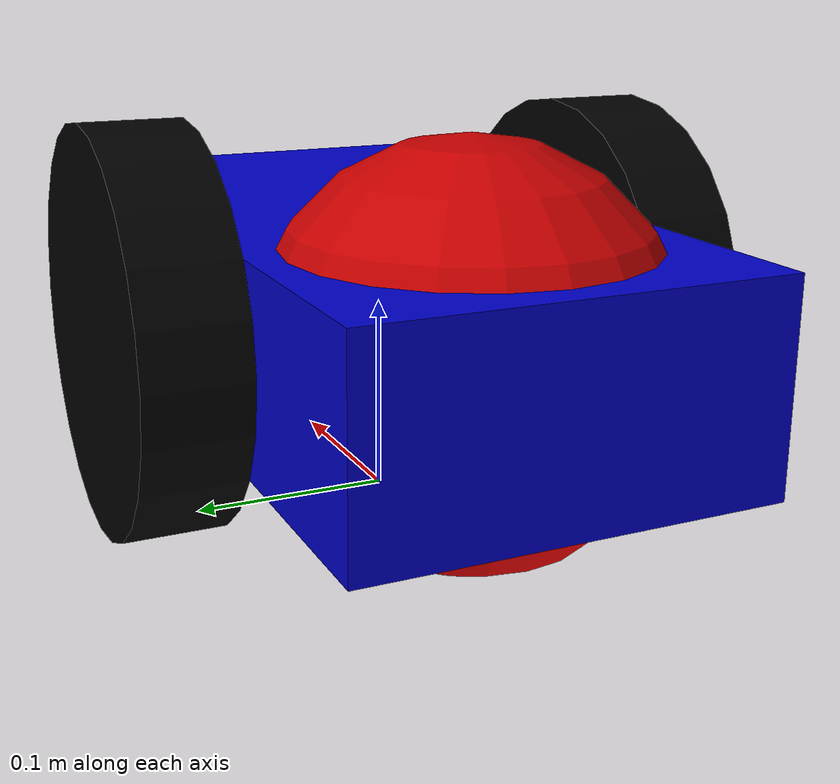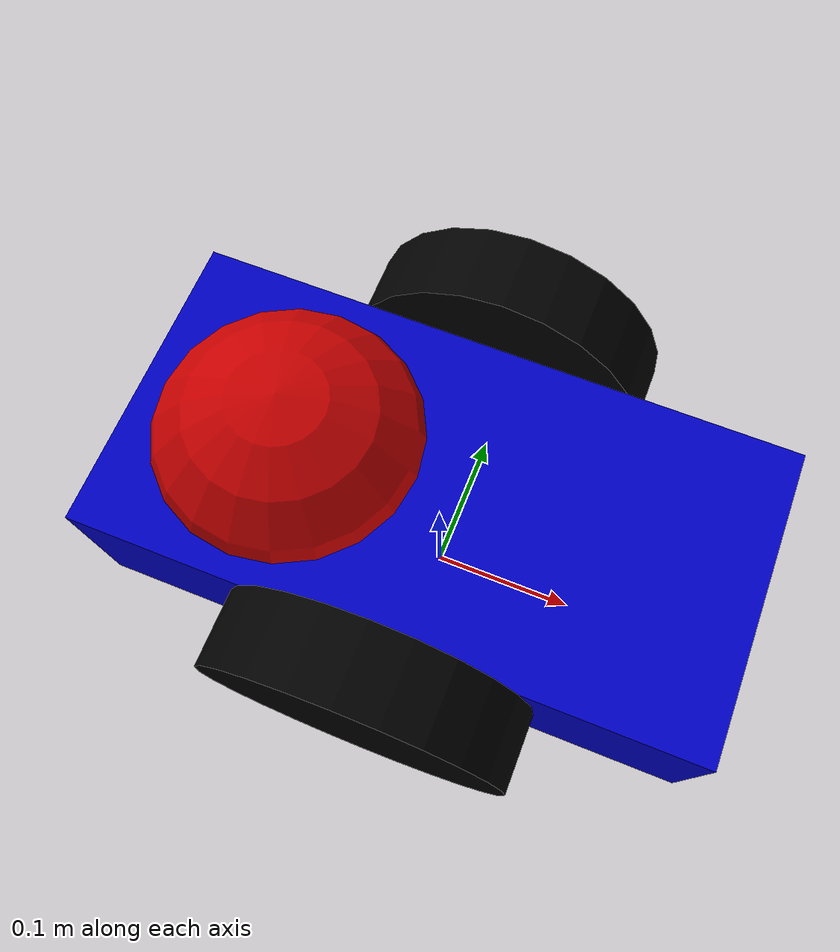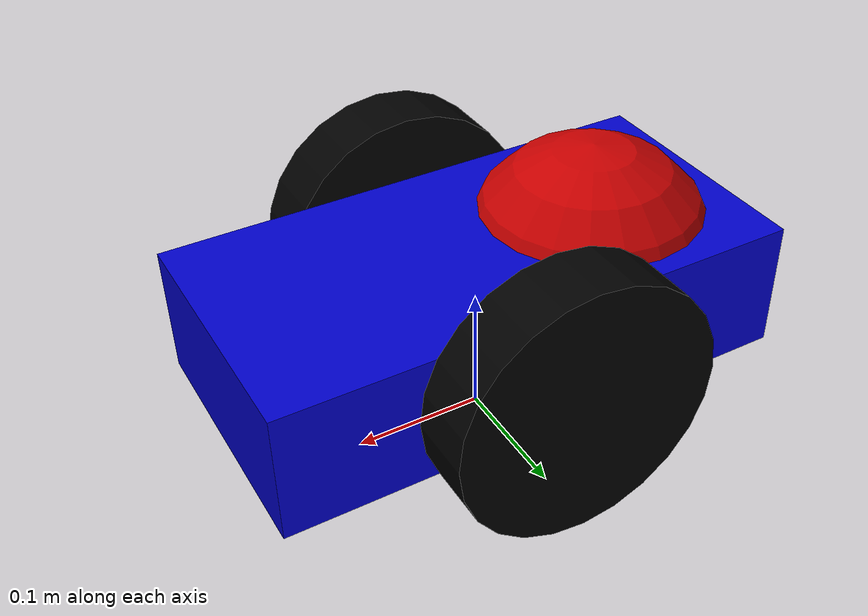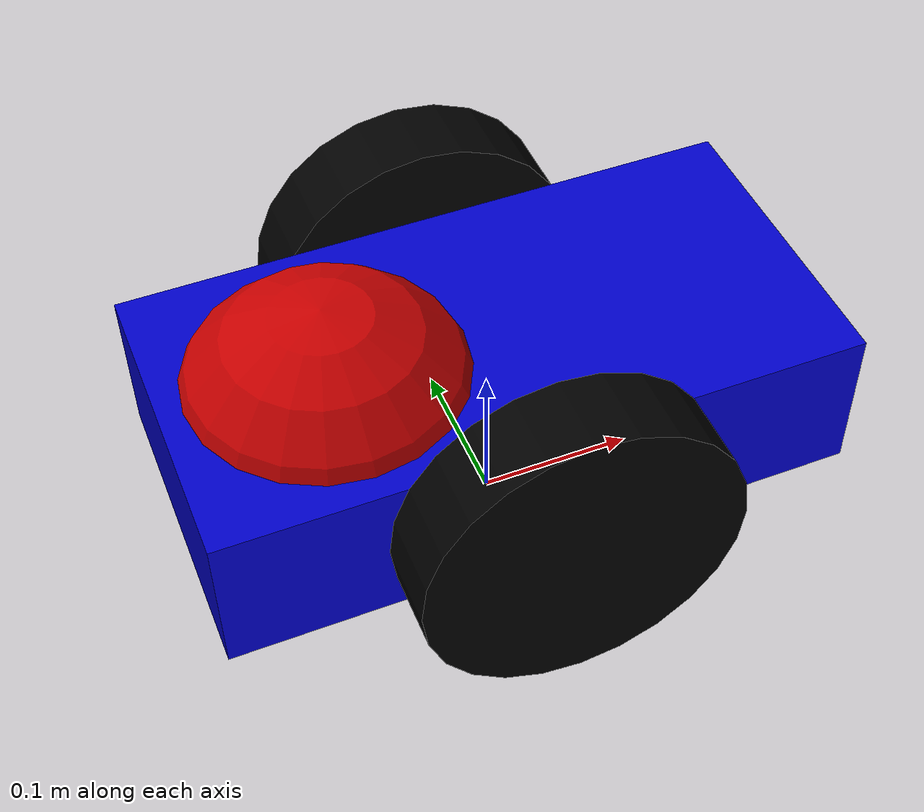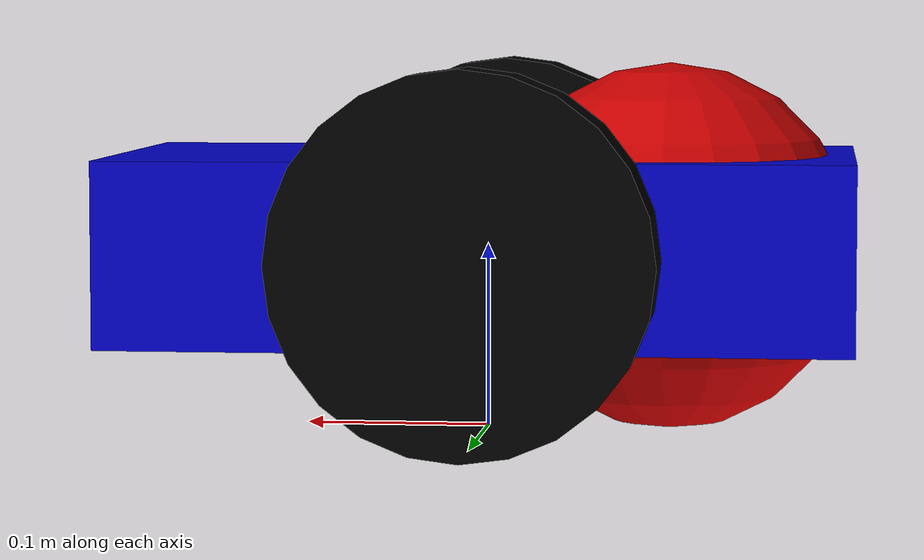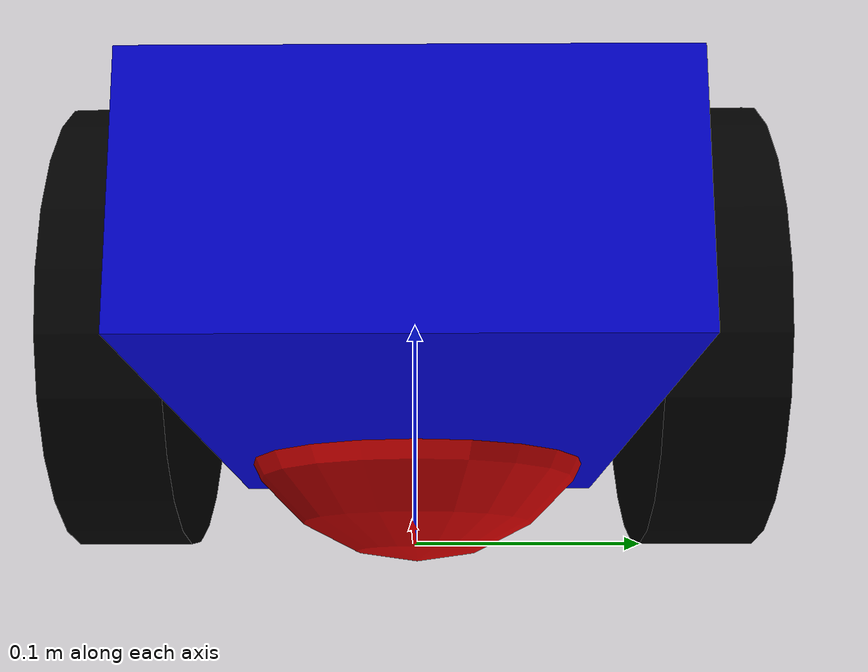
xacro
<?xml version='1.0'?>
<robot name="mybot" xmlns:xacro="http://www.ros.org/wiki/xacro">

	<!-- Put here the robot properties common to the model -->
	<xacro:include filename="$(find mybot_description)/urdf/mybot.gazebo" />
	<xacro:include filename="$(find mybot_description)/urdf/materials.xacro" />
	<xacro:include filename="$(find mybot_description)/urdf/macros.xacro" />

	<xacro:property name="PI" value="3.1415926535897931"/>

	<xacro:property name="chassisHeight" value="0.1"/>
	<xacro:property name="chassisLength" value="0.4"/>
	<xacro:property name="chassisWidth" value="0.2"/>
	<xacro:property name="chassisMass" value="50.0"/>

	<xacro:property name="casterRadius" value="0.1"/>
	<xacro:property name="casterMass" value="5.0"/>

	<xacro:property name="wheelWidth" value="0.05"/>
	<xacro:property name="wheelRadius" value="0.1"/>
	<xacro:property name="wheelPos" value="0.2"/>
	<xacro:property name="wheelMass" value="5.0"/>

	<xacro:property name="cameraSize" value="0.05"/>
	<xacro:property name="cameraMass" value="0.1"/>
	<!-- End of common prperties description -->

<!--			ixx="1.0" ixy="0.0" ixz="0.0"-->
<!--			iyy="0.0" iyz="0.0"-->

	<link name='chassis'>
		<pose>0 0 0.1 0 0 0</pose>
<!--		Box of chassis properties-->
		<collision name="chassisCollision">
			<origin xyz="0 0 ${wheelRadius}" rpy="0 0 0"/>
			<geometry>
				<box size="${chassisLength} ${chassisWidth} ${chassisHeight}"/>
			</geometry>
		</collision>
		<visual>
			<origin xyz="0 0 ${wheelRadius}" rpy="0 0 0"/>
			<geometry>
				<box size="${chassisLength} ${chassisWidth} ${chassisHeight}"/>
			</geometry>
			<material name="blue"/>
		</visual>
		<inertial name="chassisInertia">
			<origin xyz="0 0 ${wheelRadius}" rpy="0 0 0"/>
			<mass value="${chassisMass}"/>
			<xacro:box_inertia m="${chassisMass}" x="${chassisLength}" y="${chassisWidth}" z="${chassisHeight}"/>
		</inertial>
	</link>

	<joint name="fixed" type="fixed">
		<parent link="chassis"/>
		<child link="caster_wheel"/>
	</joint>

	<link name="caster_wheel">
		<collision>
			<origin xyz="${casterRadius-chassisLength/2} 0 ${casterRadius-chassisHeight+wheelRadius}" rpy="0 0 0"/>
			<geometry>
				<sphere radius="${casterRadius}"/>
			</geometry>
		</collision>

		<visual>
			<origin xyz="${casterRadius-chassisLength/2} 0 ${casterRadius-chassisHeight+wheelRadius}" rpy="0 0 0"/>
			<geometry>
				<sphere radius="${casterRadius}"/>
			</geometry>
			<material name="red"/>
		</visual>

		<inertial>
			<origin xyz="${casterRadius-chassisLength/2} 0 ${casterRadius-chassisHeight+wheelRadius}" rpy="0 0 0"/>
			<mass value="${casterMass}"/>
			<xacro:sphere_inertia m="${casterMass}" r="${casterRadius}"/>
		</inertial>
	</link>

<!--Macros for wheels: Links and Joints both-->
	<xacro:wheel lr="left" tY="1"/>
	<xacro:wheel lr="right" tY="-1"/>

</robot>

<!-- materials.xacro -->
<robot>
<material name="black">
	<color rgba="0.0 0.0 0.0 1.0"/>
</material>

	<material name="blue">
		<color rgba="0.0 0.0 0.8 1.0"/>
	</material>

	<material name="green">
		<color rgba="0.0 0.8 0.0 1.0"/>
	</material>

	<material name="grey">
		<color rgba="0.2 0.2 0.2 1.0"/>
	</material>

	<material name="orange">
		<color rgba="0.8 0.4 0.0 1.0"/>
	</material>

	<material name="brown">
		<color rgba="${222/255} ${207/255} ${195/255} 1.0"/>
	</material>

	<material name="red">
		<color rgba="0.8 0.0 0.0 1.0"/>
	</material>

	<material name="white">
		<color rgba="1.0 1.0 1.0 1.0"/>
	</material>
</robot>

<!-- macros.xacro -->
<robot xmlns:xacro="http://www.ros.org/wiki/xacro"> <!-- NAMESPACE WAS MISSING, USE xacro:macro instead of just macro -->

	<xacro:macro name="cylinder_inertia" params="m r h">
	  <inertia  ixx="${m*(3*r*r+h*h)/12.0}" ixy = "0" ixz = "0"
		iyy="${m*(3*r*r+h*h)/12.0}" iyz = "0"
		izz="${m*r*r/2.0}"
	  />
	</xacro:macro>

	<xacro:macro name="box_inertia" params="m x y z">
	  <inertia  ixx="${m*(y*y+z*z)/12}" ixy = "0" ixz = "0"
		iyy="${m*(x*x+z*z)/12}" iyz = "0"
		izz="${m*(x*x+z*z)/12}"
	  />
	</xacro:macro>

	<xacro:macro name="sphere_inertia" params="m r">
	  <inertia  ixx="${2*m*r*r/5}" ixy = "0" ixz = "0"
		iyy="${2*m*r*r/5}" iyz = "0"
		izz="${2*m*r*r/5}"
	  />
	</xacro:macro>

	<xacro:macro name="wheel" params="lr tY">

	  <link name="${lr}_wheel">
		<collision>
		  <origin xyz="0 0 0" rpy="0 ${PI/2} ${PI/2}" />
		  <geometry>
			<cylinder length="${wheelWidth}" radius="${wheelRadius}"/>
		  </geometry>
		</collision>

		<visual>
		  <origin xyz="0 0 0" rpy="0 ${PI/2} ${PI/2}" />
		  <geometry>
			<cylinder length="${wheelWidth}" radius="${wheelRadius}"/>
		  </geometry>
		  <material name="black"/>
		</visual>

		<inertial>
		  <origin xyz="0 0 0" rpy="0 ${PI/2} ${PI/2}" />
		  <mass value="${wheelMass}"/>
		  <xacro:cylinder_inertia m="${wheelMass}" r="${wheelRadius}" h="${wheelWidth}"/>
		</inertial>
	  </link>

	  <gazebo reference="${lr}_wheel">
		<mu1 value="1.0"/>
		<mu2 value="1.0"/>
		<kp  value="10000000.0" />
		<kd  value="1.0" />
		<fdir1 value="1 0 0"/>
		<material>Gazebo/Black</material>
	  </gazebo>

	  <joint name="${lr}_wheel_hinge" type="continuous">
		<parent link="chassis"/>
		<child link="${lr}_wheel"/>
	  <origin xyz="${-wheelPos+chassisLength/2} ${tY*wheelWidth/2+tY*chassisWidth/2} ${wheelRadius}" rpy="0 0 0" />
		<axis xyz="0 1 0" rpy="0 0 0" />
		<limit effort="10000" velocity="10000"/>
		<joint_properties damping="0.0" friction="0.0"/>
	  </joint>

	  <transmission name="${lr}_trans">
		<type>transmission_interface/SimpleTransmission</type>
		<joint name="${lr}_wheel_hinge">
			<hardwareInterface>hardware_interface/EffortJointInterface</hardwareInterface>
		</joint>
		<actuator name="${lr}Motor">
			<hardwareInterface>hardware_interface/EffortJointInterface</hardwareInterface>
<!--			https://answers.ros.org/question/372646/controller_manager-not-publishing-joint_state-topic/-->
		  <mechanicalReduction>10</mechanicalReduction>
		</actuator>
	  </transmission>

	</xacro:macro>
</robot>
